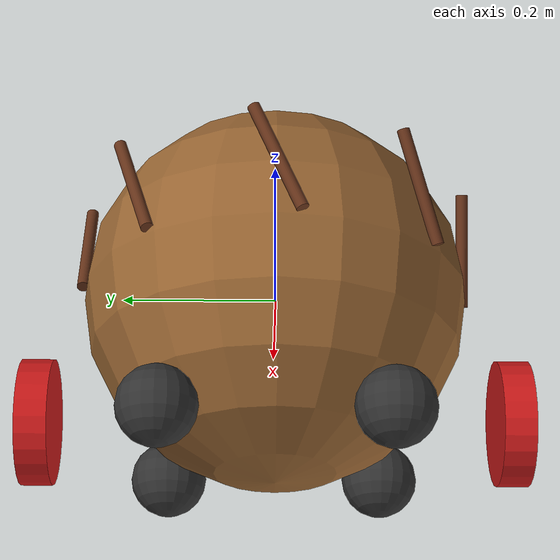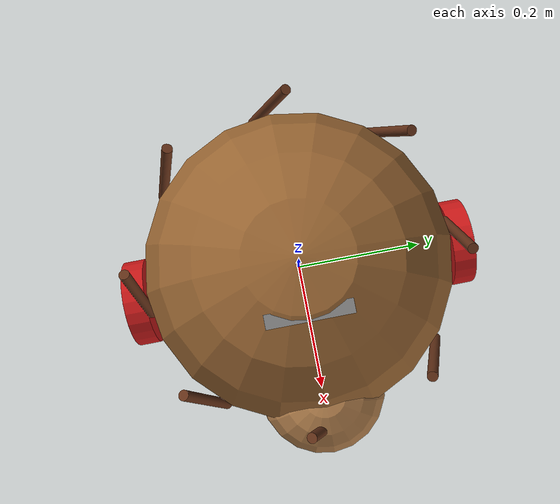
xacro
<?xml version="1.0"?>
<robot name="hedgehog_robot" xmlns:xacro="http://www.ros.org/wiki/xacro">

  <!-- Включение Gazebo конфигурации -->
  <xacro:include filename="robot.gazebo.xacro"/>

  <!-- Основные параметры робота-ежика -->
  <xacro:property name="body_radius" value="0.25"/>
  <xacro:property name="body_height" value="0.2"/>
  <xacro:property name="wheel_radius" value="0.08"/>
  <xacro:property name="wheel_width" value="0.04"/>
  <xacro:property name="spike_length" value="0.15"/>
  <xacro:property name="eye_radius" value="0.02"/>
  <xacro:property name="ball_radius" value="0.05"/>
  <xacro:property name="M_PI" value="3.1415926535897931"/>

  <material name="brown">
    <color rgba="0.6 0.4 0.2 1.0"/>
  </material>

  <material name="dark_brown">
    <color rgba="0.4 0.2 0.1 1.0"/>
  </material>

  <material name="dark_gray">
    <color rgba="0.2 0.2 0.2 1.0"/>
  </material>

  <material name="red">
    <color rgba="0.8 0.1 0.1 1.0"/>
  </material>

  <material name="light_brown">
    <color rgba="0.7 0.5 0.3 1.0"/>
  </material>

  <material name="black">
    <color rgba="0 0 0 1.0"/>
  </material>

  <material name="gray">
    <color rgba="0.5 0.5 0.5 1.0"/>
  </material>

  <material name="transparent">
    <color rgba="0 0 0 0.0"/>
  </material>

  <!-- Основное тело (сфера) -->
  <link name="base_link">
    <visual>
      <geometry>
        <sphere radius="${body_radius}"/>
      </geometry>
      <material name="brown"/>
    </visual>
    <collision>
      <geometry>
        <sphere radius="${body_radius}"/>
      </geometry>
      <surface>
        <friction>
          <ode>
            <mu>0.8</mu>
            <mu2>0.8</mu2>
          </ode>
        </friction>
      </surface>
    </collision>
    <inertial>
      <mass value="3.0"/>
      <origin xyz="0 0 0" rpy="0 0 0"/>
      <inertia
        ixx="${2.0/5.0 * 3.0 * body_radius * body_radius}"
        ixy="0"
        ixz="0"
        iyy="${2.0/5.0 * 3.0 * body_radius * body_radius}"
        iyz="0"
        izz="${2.0/5.0 * 3.0 * body_radius * body_radius}"/>
    </inertial>
  </link>

  <!-- Макрос для сферического колеса -->
  <xacro:macro name="spherical_wheel" params="name x y z">
    <link name="${name}_wheel">
      <visual>
        <geometry>
          <sphere radius="${ball_radius}"/>
        </geometry>
        <material name="dark_gray"/>
      </visual>
      <collision>
        <geometry>
          <sphere radius="${ball_radius}"/>
        </geometry>
        <surface>
          <friction>
            <ode>
              <mu>0.01</mu>
              <mu2>0.01</mu2>
              <slip1>0.1</slip1>
              <slip2>0.1</slip2>
            </ode>
          </friction>
        </surface>
      </collision>
      <inertial>
        <mass value="0.2"/>
        <origin xyz="0 0 0" rpy="0 0 0"/>
        <inertia
          ixx="${2.0/5.0 * 0.2 * ball_radius * ball_radius}"
          ixy="0"
          ixz="0"
          iyy="${2.0/5.0 * 0.2 * ball_radius * ball_radius}"
          iyz="0"
          izz="${2.0/5.0 * 0.2 * ball_radius * ball_radius}"/>
      </inertial>
    </link>

    <!-- Базовая связка для вращения -->
    <link name="${name}_base">
      <visual>
        <geometry>
          <sphere radius="0.01"/>
        </geometry>
        <material name="transparent"/>
      </visual>
      <inertial>
        <mass value="0.001"/>
        <origin xyz="0 0 0" rpy="0 0 0"/>
        <inertia ixx="0.000001" ixy="0" ixz="0" iyy="0.000001" iyz="0" izz="0.000001"/>
      </inertial>
    </link>

    <!-- Соединение базы с телом -->
    <joint name="${name}_base_joint" type="fixed">
      <parent link="base_link"/>
      <child link="${name}_base"/>
      <origin xyz="${x} ${y} ${z}" rpy="0 0 0"/>
    </joint>

    <!-- Вращательное соединение для колеса -->
    <joint name="${name}_wheel_joint" type="continuous">
      <parent link="${name}_base"/>
      <child link="${name}_wheel"/>
      <origin xyz="0 0 0" rpy="0 0 0"/>
      <axis xyz="1 0 0"/>
    </joint>
  </xacro:macro>

  <!-- Создаем 4 сферических колеса -->
  <xacro:property name="wheel_distance" value="${body_radius * 0.8}"/>

  <xacro:spherical_wheel name="front_right"
    x="${wheel_distance * 0.707}"
    y="${-wheel_distance * 0.707}"
    z="${-body_radius + ball_radius}"/>

  <xacro:spherical_wheel name="front_left"
    x="${wheel_distance * 0.707}"
    y="${wheel_distance * 0.707}"
    z="${-body_radius + ball_radius}"/>

  <xacro:spherical_wheel name="rear_right"
    x="${-wheel_distance * 0.707}"
    y="${-wheel_distance * 0.707}"
    z="${-body_radius + ball_radius}"/>

  <xacro:spherical_wheel name="rear_left"
    x="${-wheel_distance * 0.707}"
    y="${wheel_distance * 0.707}"
    z="${-body_radius + ball_radius}"/>

  <!-- Ведущие колеса -->
  <link name="drive_wheel_left">
    <visual>
      <origin xyz="0 0 0" rpy="${M_PI/2} 0 0"/>
      <geometry>
        <cylinder radius="${wheel_radius}" length="${wheel_width}"/>
      </geometry>
      <material name="red"/>
    </visual>
    <collision>
      <origin xyz="0 0 0" rpy="${M_PI/2} 0 0"/>
      <geometry>
        <cylinder radius="${wheel_radius}" length="${wheel_width}"/>
      </geometry>
      <surface>
        <friction>
          <ode>
            <mu>2.0</mu>
            <mu2>2.0</mu2>
          </ode>
        </friction>
      </surface>
    </collision>
    <inertial>
      <mass value="0.5"/>
      <origin xyz="0 0 0" rpy="0 0 0"/>
      <inertia
        ixx="${0.5*(3*wheel_radius*wheel_radius + wheel_width*wheel_width)/12}"
        ixy="0"
        ixz="0"
        iyy="${0.5*wheel_radius*wheel_radius/2}"
        iyz="0"
        izz="${0.5*(3*wheel_radius*wheel_radius + wheel_width*wheel_width)/12}"/>
    </inertial>
  </link>

  <link name="drive_wheel_right">
    <visual>
      <origin xyz="0 0 0" rpy="${M_PI/2} 0 0"/>
      <geometry>
        <cylinder radius="${wheel_radius}" length="${wheel_width}"/>
      </geometry>
      <material name="red"/>
    </visual>
    <collision>
      <origin xyz="0 0 0" rpy="${M_PI/2} 0 0"/>
      <geometry>
        <cylinder radius="${wheel_radius}" length="${wheel_width}"/>
      </geometry>
      <surface>
        <friction>
          <ode>
            <mu>2.0</mu>
            <mu2>2.0</mu2>
          </ode>
        </friction>
      </surface>
    </collision>
    <inertial>
      <mass value="0.5"/>
      <origin xyz="0 0 0" rpy="0 0 0"/>
      <inertia
        ixx="${0.5*(3*wheel_radius*wheel_radius + wheel_width*wheel_width)/12}"
        ixy="0"
        ixz="0"
        iyy="${0.5*wheel_radius*wheel_radius/2}"
        iyz="0"
        izz="${0.5*(3*wheel_radius*wheel_radius + wheel_width*wheel_width)/12}"/>
    </inertial>
  </link>

  <!-- Соединения для ведущих колес -->
  <joint name="drive_wheel_left_joint" type="continuous">
    <parent link="base_link"/>
    <child link="drive_wheel_left"/>
    <origin xyz="0 ${body_radius*1.2} ${-body_radius + wheel_radius}" rpy="0 0 0"/>
    <axis xyz="0 1 0"/>
  </joint>

  <joint name="drive_wheel_right_joint" type="continuous">
    <parent link="base_link"/>
    <child link="drive_wheel_right"/>
    <origin xyz="0 ${-body_radius*1.2} ${-body_radius + wheel_radius}" rpy="0 0 0"/>
    <axis xyz="0 1 0"/>
  </joint>

  <!-- Голова -->
  <link name="head_link">
    <visual>
      <geometry>
        <sphere radius="${body_radius*0.4}"/>
      </geometry>
      <material name="light_brown"/>
    </visual>
    <collision>
      <geometry>
        <sphere radius="${body_radius*0.4}"/>
      </geometry>
    </collision>
    <inertial>
      <mass value="0.2"/>
      <origin xyz="0 0 0" rpy="0 0 0"/>
      <inertia ixx="0.001" ixy="0" ixz="0" iyy="0.001" iyz="0" izz="0.001"/>
    </inertial>
  </link>

  <joint name="head_joint" type="fixed">
    <parent link="base_link"/>
    <child link="head_link"/>
    <origin xyz="${body_radius*0.8} 0 ${body_radius*0.1}" rpy="0 0 0"/>
  </joint>

  <!-- Глаза -->
  <link name="left_eye_link">
    <visual>
      <geometry>
        <sphere radius="${eye_radius}"/>
      </geometry>
      <material name="black"/>
    </visual>
    <inertial>
      <mass value="0.01"/>
      <origin xyz="0 0 0" rpy="0 0 0"/>
      <inertia ixx="0.00001" ixy="0" ixz="0" iyy="0.00001" iyz="0" izz="0.00001"/>
    </inertial>
  </link>

  <joint name="left_eye_joint" type="fixed">
    <parent link="head_link"/>
    <child link="left_eye_link"/>
    <origin xyz="0 ${body_radius*0.15} ${body_radius*0.15}" rpy="0 0 0"/>
  </joint>

  <link name="right_eye_link">
    <visual>
      <geometry>
        <sphere radius="${eye_radius}"/>
      </geometry>
      <material name="black"/>
    </visual>
    <inertial>
      <mass value="0.01"/>
      <origin xyz="0 0 0" rpy="0 0 0"/>
      <inertia ixx="0.00001" ixy="0" ixz="0" iyy="0.00001" iyz="0" izz="0.00001"/>
    </inertial>
  </link>

  <joint name="right_eye_joint" type="fixed">
    <parent link="head_link"/>
    <child link="right_eye_link"/>
    <origin xyz="0 ${-body_radius*0.15} ${body_radius*0.15}" rpy="0 0 0"/>
  </joint>

  <!-- Иголки -->
  <xacro:macro name="spike" params="name angle">
    <link name="${name}">
      <visual>
        <geometry>
          <cylinder radius="0.008" length="${spike_length}"/>
        </geometry>
        <material name="dark_brown"/>
      </visual>
      <collision>
        <geometry>
          <cylinder radius="0.008" length="${spike_length}"/>
        </geometry>
      </collision>
      <inertial>
        <mass value="0.02"/>
        <origin xyz="0 0 0" rpy="0 0 0"/>
        <inertia ixx="0.0001" ixy="0" ixz="0" iyy="0.0001" iyz="0" izz="0.0001"/>
      </inertial>
    </link>

    <joint name="${name}_joint" type="fixed">
      <parent link="base_link"/>
      <child link="${name}"/>
      <origin xyz="${body_radius*cos(angle)} ${body_radius*sin(angle)} ${body_radius*0.3}"
              rpy="0.4 0 ${angle}"/>
    </joint>
  </xacro:macro>

  <xacro:spike name="spike_0" angle="0"/>
  <xacro:spike name="spike_1" angle="${M_PI/4}"/>
  <xacro:spike name="spike_2" angle="${M_PI/2}"/>
  <xacro:spike name="spike_3" angle="${3*M_PI/4}"/>
  <xacro:spike name="spike_4" angle="${M_PI}"/>
  <xacro:spike name="spike_5" angle="${5*M_PI/4}"/>
  <xacro:spike name="spike_6" angle="${3*M_PI/2}"/>
  <xacro:spike name="spike_7" angle="${7*M_PI/4}"/>

  <!-- Хвост -->
  <link name="tail_link">
    <visual>
      <geometry>
        <cylinder radius="0.015" length="0.1"/>
      </geometry>
      <material name="dark_brown"/>
    </visual>
    <inertial>
      <mass value="0.02"/>
      <origin xyz="0 0 0" rpy="0 0 0"/>
      <inertia ixx="0.0001" ixy="0" ixz="0" iyy="0.0001" iyz="0" izz="0.0001"/>
    </inertial>
  </link>

  <joint name="tail_joint" type="fixed">
    <parent link="base_link"/>
    <child link="tail_link"/>
    <origin xyz="${-body_radius*0.8} 0 ${body_radius*0.2}" rpy="0.5 0 0"/>
  </joint>

  <!-- Камера глубины - ПЕРЕМЕЩЕНА НАВЕРХ РОБОТА -->
  <link name="depth_frame">
    <visual>
      <origin xyz="0 0 0" rpy="0 0 0"/>
      <geometry>
        <box size="0.02 0.12 0.02"/>
      </geometry>
      <material name="gray"/>
    </visual>
    <inertial>
      <origin xyz="0 0 0" rpy="0 0 0"/>
      <mass value="0.001"/>
      <inertia ixx="0.0001" ixy="0.0" ixz="0.0"
               iyy="0.0001" iyz="0.0"
               izz="0.0001"/>
    </inertial>
  </link>

  <!-- Камера теперь наверху, смотрит вперед -->
  <joint name="depth_joint" type="fixed">
    <parent link="base_link"/>
    <child link="depth_frame"/>
    <!-- Расположение: сверху робота, немного вперед, смотрит вперед -->
    <origin xyz="${body_radius*0.3} 0 ${body_radius*0.9}" rpy="0 0 0"/>
  </joint>

  <!-- IMU - ПЕРЕМЕЩЕН В ЦЕНТР МАСС -->
  <link name="imu_link">
    <visual>
      <origin xyz="0 0 0" rpy="0 0 0"/>
      <geometry>
        <box size="0.03 0.03 0.03"/> <!-- Уменьшен для лучшего размещения -->
      </geometry>
      <material name="gray"/>
    </visual>
    <inertial>
      <origin xyz="0 0 0" rpy="0 0 0"/>
      <mass value="0.001"/>
      <inertia ixx="0.000166667" ixy="0.0" ixz="0.0"
              iyy="0.000166667" iyz="0.0"
              izz="0.000166667"/>
    </inertial>
  </link>

  <!-- IMU теперь в центре масс (центре робота) -->
  <joint name="imu_joint" type="fixed">
    <parent link="base_link"/>
    <child link="imu_link"/>
    <!-- Расположение: в центре робота для точных измерений -->
    <origin xyz="0 0 0" rpy="0 0 0"/>
  </joint>

</robot>
